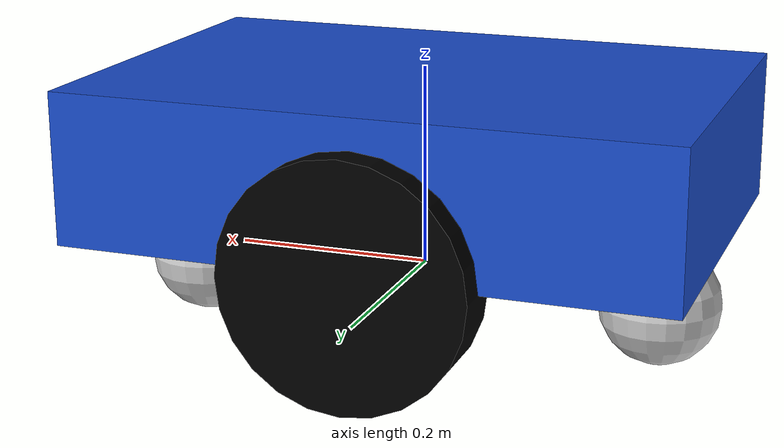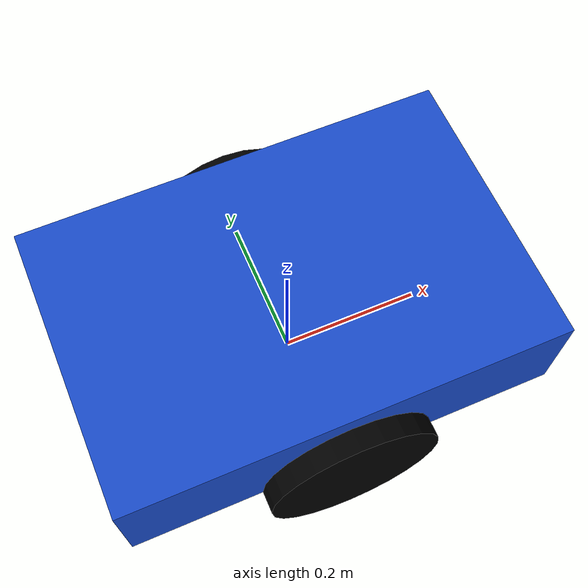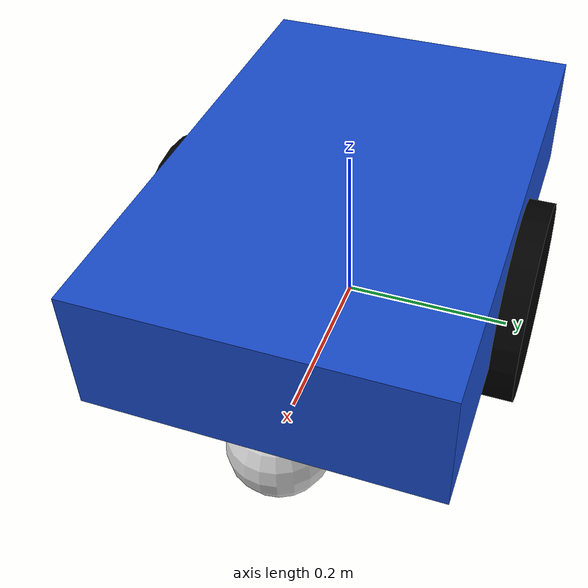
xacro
<?xml version="1.0"?>
<!-- Sirius differential drive robot URDF -->
<robot xmlns:xacro="http://www.ros.org/wiki/xacro" name="sirius_robot">

  <!-- Robot prefix parameter for frame naming -->
  <xacro:arg name="prefix" default=""/>
  <xacro:property name="prefix" value="$(arg prefix)"/>

  <!-- Constants for robot dimensions -->
  <xacro:property name="PI" value="3.1415926535897931"/>
  <xacro:property name="base_mass" value="2.0"/>
  <xacro:property name="base_width" value="0.4"/>
  <xacro:property name="base_length" value="0.6"/>
  <xacro:property name="base_height" value="0.15"/>
  <xacro:property name="wheel_mass" value="0.8"/>
  <xacro:property name="wheel_radius" value="0.12"/>
  <xacro:property name="wheel_width" value="0.06"/>
  <xacro:property name="wheel_ygap" value="0.2"/>
  <xacro:property name="caster_radius" value="0.06"/>

  <!-- Define materials -->
  <material name="sirius_blue">
    <color rgba="0.1 0.3 0.8 1"/>
  </material>

  <material name="black">
    <color rgba="0 0 0 1"/>
  </material>

  <material name="gray">
    <color rgba="0.8 0.8 0.8 1"/>
  </material>

  <material name="white">
    <color rgba="1 1 1 1"/>
  </material>

  <!-- Base Link -->
  <link name="${prefix}base_link">
    <visual>
      <origin xyz="0 0 0" rpy="0 0 0"/>
      <geometry>
        <box size="${base_length} ${base_width} ${base_height}"/>
      </geometry>
      <material name="sirius_blue"/>
    </visual>

    <collision>
      <origin xyz="0 0 0" rpy="0 0 0"/>
      <geometry>
        <box size="${base_length} ${base_width} ${base_height}"/>
      </geometry>
    </collision>

    <inertial>
      <mass value="${base_mass}"/>
      <origin xyz="0 0 0" rpy="0 0 0"/>
      <inertia
        ixx="${base_mass / 12.0 * (base_width*base_width + base_height*base_height)}"
        ixy="0.0"
        ixz="0.0"
        iyy="${base_mass / 12.0 * (base_length*base_length + base_height*base_height)}"
        iyz="0.0"
        izz="${base_mass / 12.0 * (base_length*base_length + base_width*base_width)}"/>
    </inertial>
  </link>

  <!-- Base Footprint -->
  <link name="${prefix}base_footprint"/>

  <joint name="${prefix}base_joint" type="fixed">
    <parent link="${prefix}base_footprint"/>
    <child link="${prefix}base_link"/>
    <origin xyz="0.0 0.0 ${wheel_radius}" rpy="0 0 0"/>
  </joint>

  <!-- Left Wheel -->
  <link name="${prefix}left_wheel">
    <visual>
      <origin xyz="0 0 0" rpy="${PI/2} 0 0"/>
      <geometry>
        <cylinder radius="${wheel_radius}" length="${wheel_width}"/>
      </geometry>
      <material name="black"/>
    </visual>

    <collision>
      <origin xyz="0 0 0" rpy="${PI/2} 0 0"/>
      <geometry>
        <cylinder radius="${wheel_radius}" length="${wheel_width}"/>
      </geometry>
    </collision>

    <inertial>
      <mass value="${wheel_mass}"/>
      <origin xyz="0 0 0" rpy="${PI/2} 0 0"/>
      <inertia
        ixx="${wheel_mass / 12.0 * (3*wheel_radius*wheel_radius + wheel_width*wheel_width)}"
        ixy="0.0"
        ixz="0.0"
        iyy="${wheel_mass / 12.0 * (3*wheel_radius*wheel_radius + wheel_width*wheel_width)}"
        iyz="0.0"
        izz="${wheel_mass / 2.0 * wheel_radius*wheel_radius}"/>
    </inertial>
  </link>

  <joint name="${prefix}left_wheel_joint" type="continuous">
    <parent link="${prefix}base_link"/>
    <child link="${prefix}left_wheel"/>
    <origin xyz="0 ${wheel_ygap} ${-base_height/2}" rpy="0 0 0"/>
    <axis xyz="0 1 0"/>
  </joint>

  <!-- Right Wheel -->
  <link name="${prefix}right_wheel">
    <visual>
      <origin xyz="0 0 0" rpy="${PI/2} 0 0"/>
      <geometry>
        <cylinder radius="${wheel_radius}" length="${wheel_width}"/>
      </geometry>
      <material name="black"/>
    </visual>

    <collision>
      <origin xyz="0 0 0" rpy="${PI/2} 0 0"/>
      <geometry>
        <cylinder radius="${wheel_radius}" length="${wheel_width}"/>
      </geometry>
    </collision>

    <inertial>
      <mass value="${wheel_mass}"/>
      <origin xyz="0 0 0" rpy="${PI/2} 0 0"/>
      <inertia
        ixx="${wheel_mass / 12.0 * (3*wheel_radius*wheel_radius + wheel_width*wheel_width)}"
        ixy="0.0"
        ixz="0.0"
        iyy="${wheel_mass / 12.0 * (3*wheel_radius*wheel_radius + wheel_width*wheel_width)}"
        iyz="0.0"
        izz="${wheel_mass / 2.0 * wheel_radius*wheel_radius}"/>
    </inertial>
  </link>

  <joint name="${prefix}right_wheel_joint" type="continuous">
    <parent link="${prefix}base_link"/>
    <child link="${prefix}right_wheel"/>
    <origin xyz="0 ${-wheel_ygap} ${-base_height/2}" rpy="0 0 0"/>
    <axis xyz="0 1 0"/>
  </joint>

  <!-- Front Caster Wheel -->
  <link name="${prefix}front_caster">
    <visual>
      <origin xyz="0 0 0" rpy="0 0 0"/>
      <geometry>
        <sphere radius="${caster_radius}"/>
      </geometry>
      <material name="gray"/>
    </visual>

    <collision>
      <origin xyz="0 0 0" rpy="0 0 0"/>
      <geometry>
        <sphere radius="${caster_radius}"/>
      </geometry>
    </collision>

    <inertial>
      <mass value="0.1"/>
      <origin xyz="0 0 0" rpy="0 0 0"/>
      <inertia
        ixx="${0.1 * 2.0/5.0 * caster_radius*caster_radius}"
        ixy="0.0"
        ixz="0.0"
        iyy="${0.1 * 2.0/5.0 * caster_radius*caster_radius}"
        iyz="0.0"
        izz="${0.1 * 2.0/5.0 * caster_radius*caster_radius}"/>
    </inertial>
  </link>

  <joint name="${prefix}front_caster_joint" type="fixed">
    <parent link="${prefix}base_link"/>
    <child link="${prefix}front_caster"/>
    <origin xyz="${base_length/2 - caster_radius} 0 ${-base_height/2 - caster_radius}" rpy="0 0 0"/>
  </joint>

  <!-- Rear Caster Wheel -->
  <link name="${prefix}rear_caster">
    <visual>
      <origin xyz="0 0 0" rpy="0 0 0"/>
      <geometry>
        <sphere radius="${caster_radius}"/>
      </geometry>
      <material name="gray"/>
    </visual>

    <collision>
      <origin xyz="0 0 0" rpy="0 0 0"/>
      <geometry>
        <sphere radius="${caster_radius}"/>
      </geometry>
    </collision>

    <inertial>
      <mass value="0.1"/>
      <origin xyz="0 0 0" rpy="0 0 0"/>
      <inertia
        ixx="${0.1 * 2.0/5.0 * caster_radius*caster_radius}"
        ixy="0.0"
        ixz="0.0"
        iyy="${0.1 * 2.0/5.0 * caster_radius*caster_radius}"
        iyz="0.0"
        izz="${0.1 * 2.0/5.0 * caster_radius*caster_radius}"/>
    </inertial>
  </link>

  <joint name="${prefix}rear_caster_joint" type="fixed">
    <parent link="${prefix}base_link"/>
    <child link="${prefix}rear_caster"/>
    <origin xyz="${-base_length/2 + caster_radius} 0 ${-base_height/2 - caster_radius}" rpy="0 0 0"/>
  </joint>

</robot>
